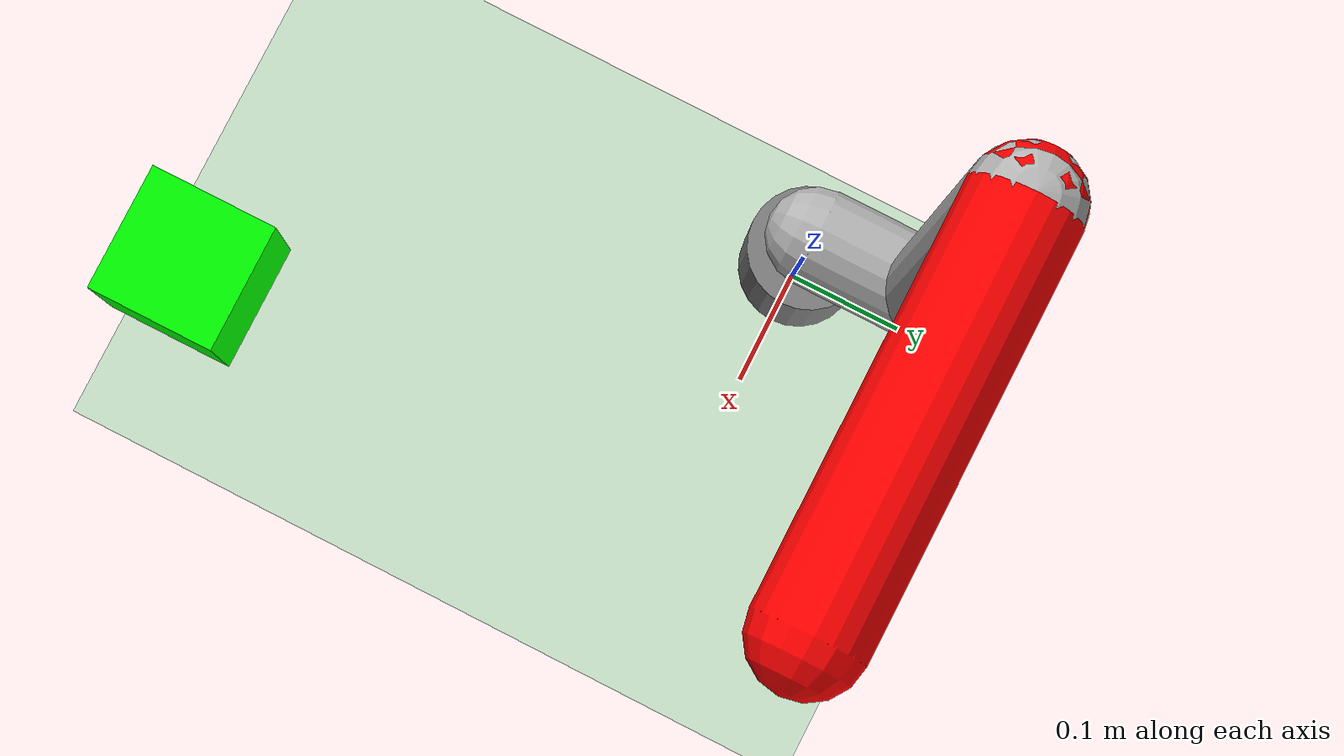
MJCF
<!--workstation.xml-->
<mujoco model="ur5_hrc">
    <option timestep="0.002" integrator="RK4" gravity="0 0 -9.81"/>

    <worldbody>
        <camera name="task_view" pos="1.5 -1.5 1.2" euler="1.0 0 0.8"/>

        <light diffuse=".5 .5 .5" pos="0 0 3" dir="0 0 -1"/>
        <geom name="floor" type="plane" size="3 3 0.1" rgba="0.8 0.9 0.8 1"/>

        <body name="base" pos="0 0 0.1">
            <geom type="cylinder" size="0.05 0.05" rgba="0.5 0.5 0.5 1"/>

            <body name="shoulder_link" pos="0 0 0.1">
                <geom type="capsule" size="0.04" fromto="0 0 0 0 0.1 0" rgba="0.7 0.7 0.7 1"/>

                <body name="upper_arm_link" pos="0 0.1 0">
                    <geom type="capsule" size="0.04" fromto="0 0 0 0 0 0.4" rgba="0.7 0.7 0.7 1"/>

                    <body name="forearm_link" pos="0 0 0.4">
                        <joint name="elbow_joint" type="hinge" axis="0 1 0" limited="false" damping="0.1" armature="0.05"/>
                        <geom name="robot_effector" type="capsule" size="0.04" fromto="0 0 0 0.3 0 0" rgba="1 0 0 1"/>
                    </body>
                </body>
            </body>
        </body>

        <body name="human" pos="0.25 -0.4 0.3">
            <joint name="human_x" type="slide" axis="0 1 0" damping="0.1"/>
            <geom name="human_geom" type="box" size="0.05 0.05 0.05" rgba="0 1 0 1" contype="0" conaffinity="0"/>
        </body>
    </worldbody>

    <actuator>
        <velocity joint="elbow_joint" kv="150" gear="1" ctrlrange="-5 5"/>
        <velocity joint="human_x" kv="50" gear="1" ctrlrange="-5 5"/>
    </actuator>
</mujoco>
